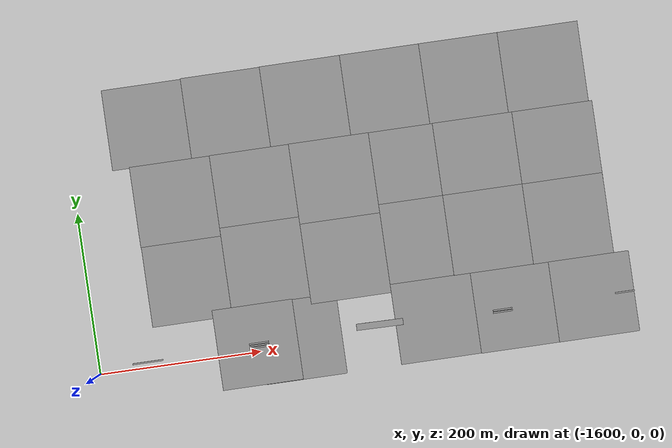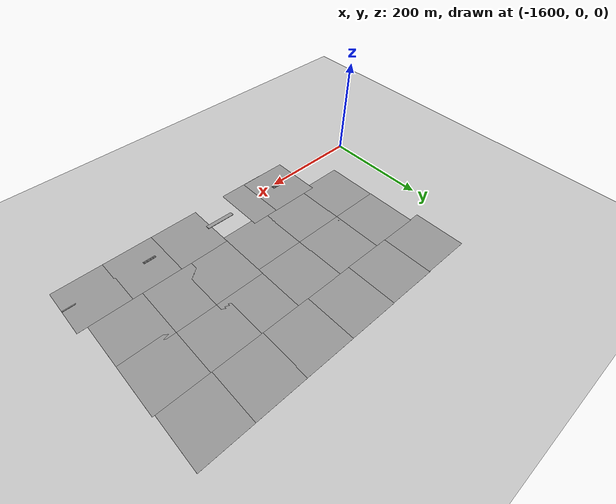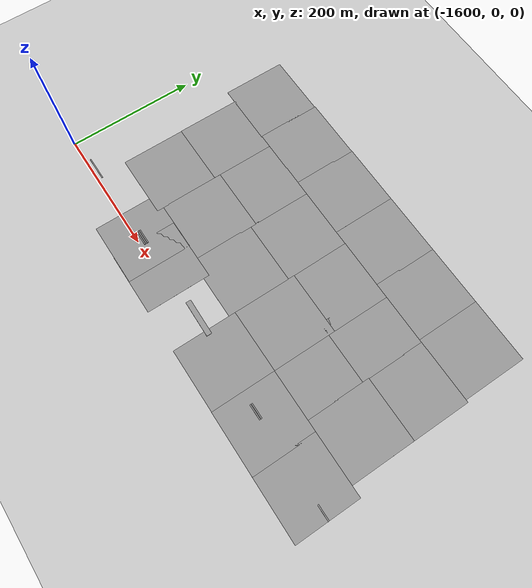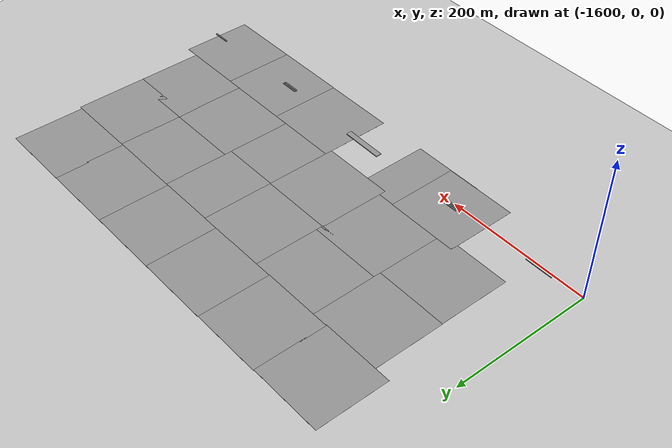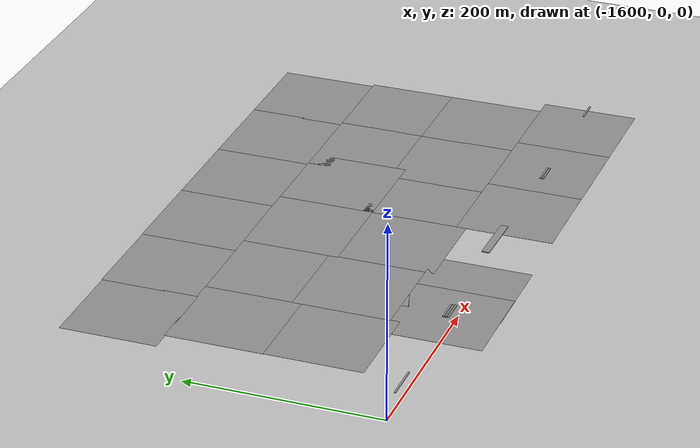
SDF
<sdf version="1.7">
 <world name="default">
  <model name="ground_plane">
   <static>1</static>
   <link name="link">
    <collision name="collision">
     <geometry><plane><normal>0 0 1</normal><size>100 100</size></plane></geometry>
     <surface><friction><ode><mu>100</mu><mu2>50</mu2></ode></friction></surface>
    </collision>
    <visual name="visual">
     <cast_shadows>0</cast_shadows>
     <geometry><plane><normal>0 0 1</normal><size>100 100</size></plane></geometry>
     <material>
      <script><uri>file://media/materials/scripts/gazebo.material</uri><name>Gazebo/Grey</name></script>
     </material>
    </visual>
   </link>
  </model>
  <model name="ground_plane_90">
   <static>1</static>
   <link name="link">
    <collision name="collision">
     <geometry><plane><normal>0 0 1</normal><size>100 100</size></plane></geometry>
     <surface>
      <contact><collide_bitmask>65535</collide_bitmask></contact>
      <friction><ode><mu>100</mu><mu2>50</mu2></ode></friction>
     </surface>
    </collision>
    <visual name="visual">
     <cast_shadows>0</cast_shadows>
     <geometry><plane><normal>0 0 1</normal><size>100 100</size></plane></geometry>
     <material>
      <script><uri>file://media/materials/scripts/gazebo.material</uri><name>Gazebo/Grey</name></script>
     </material>
    </visual>
   </link>
   <pose>-983.694 8.85714 0 0 -0 0</pose>
  </model>
  <model name="ground_plane_91">
   <static>1</static>
   <link name="link">
    <collision name="collision">
     <geometry><plane><normal>0 0 1</normal><size>100 100</size></plane></geometry>
     <surface>
      <contact><collide_bitmask>65535</collide_bitmask></contact>
      <friction><ode><mu>100</mu><mu2>50</mu2></ode></friction>
     </surface>
    </collision>
    <visual name="visual">
     <cast_shadows>0</cast_shadows>
     <geometry><plane><normal>0 0 1</normal><size>100 100</size></plane></geometry>
     <material>
      <script><uri>file://media/materials/scripts/gazebo.material</uri><name>Gazebo/Grey</name></script>
     </material>
    </visual>
   </link>
   <pose>-1001.89 108.719 0 0 -0 0</pose>
  </model>
  <model name="ground_plane_92">
   <static>1</static>
   <link name="link">
    <collision name="collision">
     <geometry><plane><normal>0 0 1</normal><size>100 100</size></plane></geometry>
     <surface>
      <contact><collide_bitmask>65535</collide_bitmask></contact>
      <friction><ode><mu>100</mu><mu2>50</mu2></ode></friction>
     </surface>
    </collision>
    <visual name="visual">
     <cast_shadows>0</cast_shadows>
     <geometry><plane><normal>0 0 1</normal><size>100 100</size></plane></geometry>
     <material>
      <script><uri>file://media/materials/scripts/gazebo.material</uri><name>Gazebo/Grey</name></script>
     </material>
    </visual>
   </link>
   <pose>-1001.86 198.71 0 0 -0 0</pose>
  </model>
  <model name="ground_plane_95">
   <static>1</static>
   <link name="link">
    <collision name="collision">
     <geometry><plane><normal>0 0 1</normal><size>100 100</size></plane></geometry>
     <surface>
      <contact><collide_bitmask>65535</collide_bitmask></contact>
      <friction><ode><mu>100</mu><mu2>50</mu2></ode></friction>
     </surface>
    </collision>
    <visual name="visual">
     <cast_shadows>0</cast_shadows>
     <geometry><plane><normal>0 0 1</normal><size>100 100</size></plane></geometry>
     <material>
      <script><uri>file://media/materials/scripts/gazebo.material</uri><name>Gazebo/Grey</name></script>
     </material>
    </visual>
   </link>
   <pose>-1081.04 8.92901 0 0 -0 0</pose>
  </model>
  <model name="ground_plane_97">
   <static>1</static>
   <link name="link">
    <collision name="collision">
     <geometry><plane><normal>0 0 1</normal><size>100 100</size></plane></geometry>
     <surface>
      <contact><collide_bitmask>65535</collide_bitmask></contact>
      <friction><ode><mu>100</mu><mu2>50</mu2></ode></friction>
     </surface>
    </collision>
    <visual name="visual">
     <cast_shadows>0</cast_shadows>
     <geometry><plane><normal>0 0 1</normal><size>100 100</size></plane></geometry>
     <material>
      <script><uri>file://media/materials/scripts/gazebo.material</uri><name>Gazebo/Grey</name></script>
     </material>
    </visual>
   </link>
   <pose>-1101.01 108.929 0 0 -0 0</pose>
  </model>
  <model name="ground_plane_98">
   <static>1</static>
   <link name="link">
    <collision name="collision">
     <geometry><plane><normal>0 0 1</normal><size>100 100</size></plane></geometry>
     <surface>
      <contact><collide_bitmask>65535</collide_bitmask></contact>
      <friction><ode><mu>100</mu><mu2>50</mu2></ode></friction>
     </surface>
    </collision>
    <visual name="visual">
     <cast_shadows>0</cast_shadows>
     <geometry><plane><normal>0 0 1</normal><size>100 100</size></plane></geometry>
     <material>
      <script><uri>file://media/materials/scripts/gazebo.material</uri><name>Gazebo/Grey</name></script>
     </material>
    </visual>
   </link>
   <pose>-1101.01 198.742 0 0 -0 0</pose>
  </model>
  <model name="ground_plane_104">
   <static>1</static>
   <link name="link">
    <collision name="collision">
     <geometry><plane><normal>0 0 1</normal><size>100 100</size></plane></geometry>
     <surface>
      <contact><collide_bitmask>65535</collide_bitmask></contact>
      <friction><ode><mu>100</mu><mu2>50</mu2></ode></friction>
     </surface>
    </collision>
    <visual name="visual">
     <cast_shadows>0</cast_shadows>
     <geometry><plane><normal>0 0 1</normal><size>100 100</size></plane></geometry>
     <material>
      <script><uri>file://media/materials/scripts/gazebo.material</uri><name>Gazebo/Grey</name></script>
     </material>
    </visual>
   </link>
   <pose>-1180.82 9.22917 0 0 -0 0</pose>
  </model>
  <model name="ground_plane_106">
   <static>1</static>
   <link name="link">
    <collision name="collision">
     <geometry><plane><normal>0 0 1</normal><size>100 100</size></plane></geometry>
     <surface>
      <contact><collide_bitmask>65535</collide_bitmask></contact>
      <friction><ode><mu>100</mu><mu2>50</mu2></ode></friction>
     </surface>
    </collision>
    <visual name="visual">
     <cast_shadows>0</cast_shadows>
     <geometry><plane><normal>0 0 1</normal><size>100 100</size></plane></geometry>
     <material>
      <script><uri>file://media/materials/scripts/gazebo.material</uri><name>Gazebo/Grey</name></script>
     </material>
    </visual>
   </link>
   <pose>-1180.82 108.835 0 0 -0 0</pose>
  </model>
  <model name="ground_plane_107">
   <static>1</static>
   <link name="link">
    <collision name="collision">
     <geometry><plane><normal>0 0 1</normal><size>100 100</size></plane></geometry>
     <surface>
      <contact><collide_bitmask>65535</collide_bitmask></contact>
      <friction><ode><mu>100</mu><mu2>50</mu2></ode></friction>
     </surface>
    </collision>
    <visual name="visual">
     <cast_shadows>0</cast_shadows>
     <geometry><plane><normal>0 0 1</normal><size>100 100</size></plane></geometry>
     <material>
      <script><uri>file://media/materials/scripts/gazebo.material</uri><name>Gazebo/Grey</name></script>
     </material>
    </visual>
   </link>
   <pose>-1180.82 198.555 0 0 -0 0</pose>
  </model>
  <model name="ground_plane_149">
   <static>1</static>
   <link name="link">
    <collision name="collision">
     <geometry><plane><normal>0 0 1</normal><size>100 100</size></plane></geometry>
     <surface>
      <contact><collide_bitmask>65535</collide_bitmask></contact>
      <friction><ode><mu>100</mu><mu2>50</mu2></ode></friction>
     </surface>
    </collision>
    <visual name="visual">
     <cast_shadows>0</cast_shadows>
     <geometry><plane><normal>0 0 1</normal><size>100 100</size></plane></geometry>
     <material>
      <script><uri>file://media/materials/scripts/gazebo.material</uri><name>Gazebo/Grey</name></script>
     </material>
    </visual>
   </link>
   <pose>-1280.53 198.741 0 0 -0 0</pose>
  </model>
  <model name="ground_plane_150">
   <static>1</static>
   <link name="link">
    <collision name="collision">
     <geometry><plane><normal>0 0 1</normal><size>100 100</size></plane></geometry>
     <surface>
      <contact><collide_bitmask>65535</collide_bitmask></contact>
      <friction><ode><mu>100</mu><mu2>50</mu2></ode></friction>
     </surface>
    </collision>
    <visual name="visual">
     <cast_shadows>0</cast_shadows>
     <geometry><plane><normal>0 0 1</normal><size>100 100</size></plane></geometry>
     <material>
      <script><uri>file://media/materials/scripts/gazebo.material</uri><name>Gazebo/Grey</name></script>
     </material>
    </visual>
   </link>
   <pose>-1280.53 99.1323 0 0 -0 0</pose>
  </model>
  <model name="ground_plane_156">
   <static>1</static>
   <link name="link">
    <collision name="collision">
     <geometry><plane><normal>0 0 1</normal><size>100 100</size></plane></geometry>
     <surface>
      <contact><collide_bitmask>65535</collide_bitmask></contact>
      <friction><ode><mu>100</mu><mu2>50</mu2></ode></friction>
     </surface>
    </collision>
    <visual name="visual">
     <cast_shadows>0</cast_shadows>
     <geometry><plane><normal>0 0 1</normal><size>100 100</size></plane></geometry>
     <material>
      <script><uri>file://media/materials/scripts/gazebo.material</uri><name>Gazebo/Grey</name></script>
     </material>
    </visual>
   </link>
   <pose>-1403.25 8.84179 0 0 -0 0</pose>
  </model>
  <model name="ground_plane_157">
   <static>1</static>
   <link name="link">
    <collision name="collision">
     <geometry><plane><normal>0 0 1</normal><size>100 100</size></plane></geometry>
     <surface>
      <contact><collide_bitmask>65535</collide_bitmask></contact>
      <friction><ode><mu>100</mu><mu2>50</mu2></ode></friction>
     </surface>
    </collision>
    <visual name="visual">
     <cast_shadows>0</cast_shadows>
     <geometry><plane><normal>0 0 1</normal><size>100 100</size></plane></geometry>
     <material>
      <script><uri>file://media/materials/scripts/gazebo.material</uri><name>Gazebo/Grey</name></script>
     </material>
    </visual>
   </link>
   <pose>-1379.25 108.087 0 0 -0 0</pose>
  </model>
  <model name="ground_plane_158">
   <static>1</static>
   <link name="link">
    <collision name="collision">
     <geometry><plane><normal>0 0 1</normal><size>100 100</size></plane></geometry>
     <surface>
      <contact><collide_bitmask>65535</collide_bitmask></contact>
      <friction><ode><mu>100</mu><mu2>50</mu2></ode></friction>
     </surface>
    </collision>
    <visual name="visual">
     <cast_shadows>0</cast_shadows>
     <geometry><plane><normal>0 0 1</normal><size>100 100</size></plane></geometry>
     <material>
      <script><uri>file://media/materials/scripts/gazebo.material</uri><name>Gazebo/Grey</name></script>
     </material>
    </visual>
   </link>
   <pose>-1379.27 198.521 0 0 -0 0</pose>
  </model>
  <model name="ground_plane_159">
   <static>1</static>
   <link name="link">
    <collision name="collision">
     <geometry><plane><normal>0 0 1</normal><size>100 100</size></plane></geometry>
     <surface>
      <contact><collide_bitmask>65535</collide_bitmask></contact>
      <friction><ode><mu>100</mu><mu2>50</mu2></ode></friction>
     </surface>
    </collision>
    <visual name="visual">
     <cast_shadows>0</cast_shadows>
     <geometry><plane><normal>0 0 1</normal><size>100 100</size></plane></geometry>
     <material>
      <script><uri>file://media/materials/scripts/gazebo.material</uri><name>Gazebo/Grey</name></script>
     </material>
    </visual>
   </link>
   <pose>-1478.95 198.22 0 0 -0 0</pose>
  </model>
  <model name="ground_plane_160">
   <static>1</static>
   <link name="link">
    <collision name="collision">
     <geometry><plane><normal>0 0 1</normal><size>100 100</size></plane></geometry>
     <surface>
      <contact><collide_bitmask>65535</collide_bitmask></contact>
      <friction><ode><mu>100</mu><mu2>50</mu2></ode></friction>
     </surface>
    </collision>
    <visual name="visual">
     <cast_shadows>0</cast_shadows>
     <geometry><plane><normal>0 0 1</normal><size>100 100</size></plane></geometry>
     <material>
      <script><uri>file://media/materials/scripts/gazebo.material</uri><name>Gazebo/Grey</name></script>
     </material>
    </visual>
   </link>
   <pose>-1478.45 98.486 0 0 -0 0</pose>
  </model>
  <model name="ground_plane_266">
   <static>1</static>
   <link name="link">
    <collision name="collision">
     <geometry><plane><normal>0 0 1</normal><size>100 100</size></plane></geometry>
     <surface>
      <contact><collide_bitmask>65535</collide_bitmask></contact>
      <friction><ode><mu>100</mu><mu2>50</mu2></ode></friction>
     </surface>
    </collision>
    <visual name="visual">
     <cast_shadows>0</cast_shadows>
     <geometry><plane><normal>0 0 1</normal><size>100 100</size></plane></geometry>
     <material>
      <script><uri>file://media/materials/scripts/gazebo.material</uri><name>Gazebo/Grey</name></script>
     </material>
    </visual>
   </link>
   <pose>-1005.94 298.474 0 0 -0 0</pose>
  </model>
  <model name="ground_plane_267">
   <static>1</static>
   <link name="link">
    <collision name="collision">
     <geometry><plane><normal>0 0 1</normal><size>100 100</size></plane></geometry>
     <surface>
      <contact><collide_bitmask>65535</collide_bitmask></contact>
      <friction><ode><mu>100</mu><mu2>50</mu2></ode></friction>
     </surface>
    </collision>
    <visual name="visual">
     <cast_shadows>0</cast_shadows>
     <geometry><plane><normal>0 0 1</normal><size>100 100</size></plane></geometry>
     <material>
      <script><uri>file://media/materials/scripts/gazebo.material</uri><name>Gazebo/Grey</name></script>
     </material>
    </visual>
   </link>
   <pose>-1103.91 298.435 0 0 -0 0</pose>
  </model>
  <model name="ground_plane_268">
   <static>1</static>
   <link name="link">
    <collision name="collision">
     <geometry><plane><normal>0 0 1</normal><size>100 100</size></plane></geometry>
     <surface>
      <contact><collide_bitmask>65535</collide_bitmask></contact>
      <friction><ode><mu>100</mu><mu2>50</mu2></ode></friction>
     </surface>
    </collision>
    <visual name="visual">
     <cast_shadows>0</cast_shadows>
     <geometry><plane><normal>0 0 1</normal><size>100 100</size></plane></geometry>
     <material>
      <script><uri>file://media/materials/scripts/gazebo.material</uri><name>Gazebo/Grey</name></script>
     </material>
    </visual>
   </link>
   <pose>-1202.54 298.395 0 0 -0 0</pose>
  </model>
  <model name="ground_plane_269">
   <static>1</static>
   <link name="link">
    <collision name="collision">
     <geometry><plane><normal>0 0 1</normal><size>100 100</size></plane></geometry>
     <surface>
      <contact><collide_bitmask>65535</collide_bitmask></contact>
      <friction><ode><mu>100</mu><mu2>50</mu2></ode></friction>
     </surface>
    </collision>
    <visual name="visual">
     <cast_shadows>0</cast_shadows>
     <geometry><plane><normal>0 0 1</normal><size>100 100</size></plane></geometry>
     <material>
      <script><uri>file://media/materials/scripts/gazebo.material</uri><name>Gazebo/Grey</name></script>
     </material>
    </visual>
   </link>
   <pose>-1302.55 298.327 0 0 -0 0</pose>
  </model>
  <model name="ground_plane_270">
   <static>1</static>
   <link name="link">
    <collision name="collision">
     <geometry><plane><normal>0 0 1</normal><size>100 100</size></plane></geometry>
     <surface>
      <contact><collide_bitmask>65535</collide_bitmask></contact>
      <friction><ode><mu>100</mu><mu2>50</mu2></ode></friction>
     </surface>
    </collision>
    <visual name="visual">
     <cast_shadows>0</cast_shadows>
     <geometry><plane><normal>0 0 1</normal><size>100 100</size></plane></geometry>
     <material>
      <script><uri>file://media/materials/scripts/gazebo.material</uri><name>Gazebo/Grey</name></script>
     </material>
    </visual>
   </link>
   <pose>-1401.15 297.847 0 0 -0 0</pose>
  </model>
  <model name="ground_plane_271">
   <static>1</static>
   <link name="link">
    <collision name="collision">
     <geometry><plane><normal>0 0 1</normal><size>100 100</size></plane></geometry>
     <surface>
      <contact><collide_bitmask>65535</collide_bitmask></contact>
      <friction><ode><mu>100</mu><mu2>50</mu2></ode></friction>
     </surface>
    </collision>
    <visual name="visual">
     <cast_shadows>0</cast_shadows>
     <geometry><plane><normal>0 0 1</normal><size>100 100</size></plane></geometry>
     <material>
      <script><uri>file://media/materials/scripts/gazebo.material</uri><name>Gazebo/Grey</name></script>
     </material>
    </visual>
   </link>
   <pose>-1499.9 296.953 0 0 -0 0</pose>
  </model>
  <model name="runway_marker_30m_clone_1">
   <pose>-1540 10 5 0 -0 0</pose>
   <link name="Wall_2">
    <collision name="Wall_2_Collision">
     <geometry><box><size>38.226 1.8 1</size></box></geometry>
     <pose>0 0 0.05 0 -0 0</pose>
    </collision>
    <visual name="Wall_2_Visual">
     <pose>0 0 0.05 0 -0 0</pose>
     <geometry><box><size>38.226 1.8 1</size></box></geometry>
     <material>
      <script><uri>file://media/materials/scripts/gazebo.material</uri><name>Gazebo/Grey</name></script>
      <ambient>1 1 1 1</ambient>
     </material>
     <meta><layer>0</layer></meta>
    </visual>
    <pose>0 -2.825 0 0 -0 0</pose>
   </link>
   <static>1</static>
  </model>
  <model name="runway_touchdown_strip_22d5m">
   <pose>-1403.25 9.8 5 0 -0 1.5708</pose>
   <link name="Wall_6">
    <collision name="Wall_6_Collision">
     <geometry><box><size>24.15 1.8 1</size></box></geometry>
     <pose>0 0 0.05 0 -0 0</pose>
    </collision>
    <visual name="Wall_6_Visual">
     <pose>0 0 0.05 0 -0 0</pose>
     <geometry><box><size>24.15 1.8 1</size></box></geometry>
     <material>
      <script><uri>file://media/materials/scripts/gazebo.material</uri><name>Gazebo/Grey</name></script>
      <ambient>1 1 1 1</ambient>
     </material>
     <meta><layer>0</layer></meta>
    </visual>
    <pose>1.16 -2.16 0 0 -0 -1.5708</pose>
   </link>
   <static>1</static>
  </model>
  <model name="runway_touchdown_strip_22d5m_clone">
   <pose>-1403.25 7.4 5 0 -0 1.5708</pose>
   <link name="Wall_6">
    <collision name="Wall_6_Collision">
     <geometry><box><size>24.15 1.8 1</size></box></geometry>
     <pose>0 0 0.05 0 -0 0</pose>
    </collision>
    <visual name="Wall_6_Visual">
     <pose>0 0 0.05 0 -0 0</pose>
     <geometry><box><size>24.15 1.8 1</size></box></geometry>
     <material>
      <script><uri>file://media/materials/scripts/gazebo.material</uri><name>Gazebo/Grey</name></script>
      <ambient>1 1 1 1</ambient>
     </material>
     <meta><layer>0</layer></meta>
    </visual>
    <pose>1.16 -2.16 0 0 -0 -1.5708</pose>
   </link>
   <static>1</static>
  </model>
  <model name="runway_touchdown_strip_22d5m_clone_0">
   <pose>-1403.25 5 5 0 -0 1.5708</pose>
   <link name="Wall_6">
    <collision name="Wall_6_Collision">
     <geometry><box><size>24.15 1.8 1</size></box></geometry>
     <pose>0 0 0.05 0 -0 0</pose>
    </collision>
    <visual name="Wall_6_Visual">
     <pose>0 0 0.05 0 -0 0</pose>
     <geometry><box><size>24.15 1.8 1</size></box></geometry>
     <material>
      <script><uri>file://media/materials/scripts/gazebo.material</uri><name>Gazebo/Grey</name></script>
      <ambient>1 1 1 1</ambient>
     </material>
     <meta><layer>0</layer></meta>
    </visual>
    <pose>1.16 -2.16 0 0 -0 -1.5708</pose>
   </link>
   <static>1</static>
  </model>
  <model name="ground_plane_279">
   <static>1</static>
   <link name="link">
    <collision name="collision">
     <geometry><plane><normal>0 0 1</normal><size>100 100</size></plane></geometry>
     <surface>
      <contact><collide_bitmask>65535</collide_bitmask></contact>
      <friction><ode><mu>100</mu><mu2>50</mu2></ode></friction>
     </surface>
    </collision>
    <visual name="visual">
     <cast_shadows>0</cast_shadows>
     <geometry><plane><normal>0 0 1</normal><size>100 100</size></plane></geometry>
     <material>
      <script><uri>file://media/materials/scripts/gazebo.material</uri><name>Gazebo/Grey</name></script>
     </material>
    </visual>
   </link>
   <pose>-1348.49 8.36866 0 0 -0 0</pose>
  </model>
  <model name="runway_aiming_markings">
   <pose>-1251 12.5 5 0 -0 1.55524</pose>
   <link name="Wall_8">
    <collision name="Wall_8_Collision">
     <geometry><box><size>57.85 8 1</size></box></geometry>
     <pose>0 0 0.05 0 -0 0</pose>
    </collision>
    <visual name="Wall_8_Visual">
     <pose>0 0 0.05 0 -0 0</pose>
     <geometry><box><size>57.85 8 1</size></box></geometry>
     <material>
      <script><uri>file://media/materials/scripts/gazebo.material</uri><name>Gazebo/Grey</name></script>
      <ambient>1 1 1 1</ambient>
     </material>
     <meta><layer>0</layer></meta>
    </visual>
    <pose>0 -0.624998 0 0 -0 -1.5708</pose>
   </link>
   <static>1</static>
  </model>
  <model name="runway_touchdown_strip_22d5m_clone_2">
   <pose>-1100 8 5 0 -0 1.5708</pose>
   <link name="Wall_6">
    <collision name="Wall_6_Collision">
     <geometry><box><size>24.15 1.8 1</size></box></geometry>
     <pose>0 0 0.05 0 -0 0</pose>
    </collision>
    <visual name="Wall_6_Visual">
     <pose>0 0 0.05 0 -0 0</pose>
     <geometry><box><size>24.15 1.8 1</size></box></geometry>
     <material>
      <script><uri>file://media/materials/scripts/gazebo.material</uri><name>Gazebo/Grey</name></script>
      <ambient>1 1 1 1</ambient>
     </material>
     <meta><layer>0</layer></meta>
    </visual>
    <pose>1.16 -2.16 0 0 -0 -1.5708</pose>
   </link>
   <static>1</static>
  </model>
  <model name="runway_touchdown_strip_22d5m_clone_2_clone">
   <pose>-1100 5.5 5 0 -0 1.5708</pose>
   <link name="Wall_6">
    <collision name="Wall_6_Collision">
     <geometry><box><size>24.15 1.8 1</size></box></geometry>
     <pose>0 0 0.05 0 -0 0</pose>
    </collision>
    <visual name="Wall_6_Visual">
     <pose>0 0 0.05 0 -0 0</pose>
     <geometry><box><size>24.15 1.8 1</size></box></geometry>
     <material>
      <script><uri>file://media/materials/scripts/gazebo.material</uri><name>Gazebo/Grey</name></script>
      <ambient>1 1 1 1</ambient>
     </material>
     <meta><layer>0</layer></meta>
    </visual>
    <pose>1.16 -2.16 0 0 -0 -1.5708</pose>
   </link>
   <static>1</static>
  </model>
  <model name="runway_touchdown_strip_22d5m_clone_2_clone_2_clone_3">
   <pose>-947.637 8 5 0 -0 1.5708</pose>
   <link name="Wall_6">
    <collision name="Wall_6_Collision">
     <geometry><box><size>24.15 1.8 1</size></box></geometry>
     <pose>0 0 0.05 0 -0 0</pose>
    </collision>
    <visual name="Wall_6_Visual">
     <pose>0 0 0.05 0 -0 0</pose>
     <geometry><box><size>24.15 1.8 1</size></box></geometry>
     <material>
      <script><uri>file://media/materials/scripts/gazebo.material</uri><name>Gazebo/Grey</name></script>
      <ambient>1 1 1 1</ambient>
     </material>
     <meta><layer>0</layer></meta>
    </visual>
    <pose>1.16 -2.16 0 0 -0 -1.5708</pose>
   </link>
   <static>1</static>
  </model>
 </world>
</sdf>
